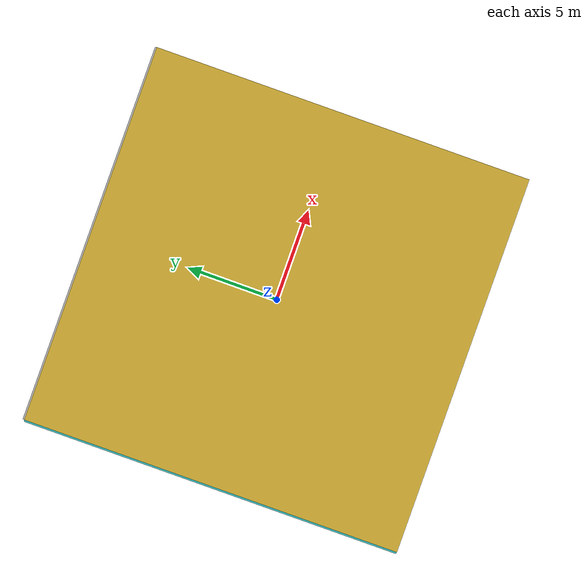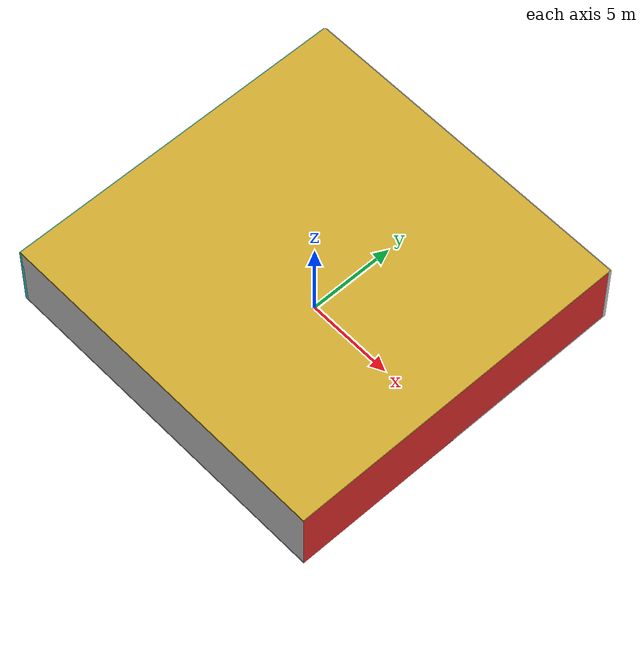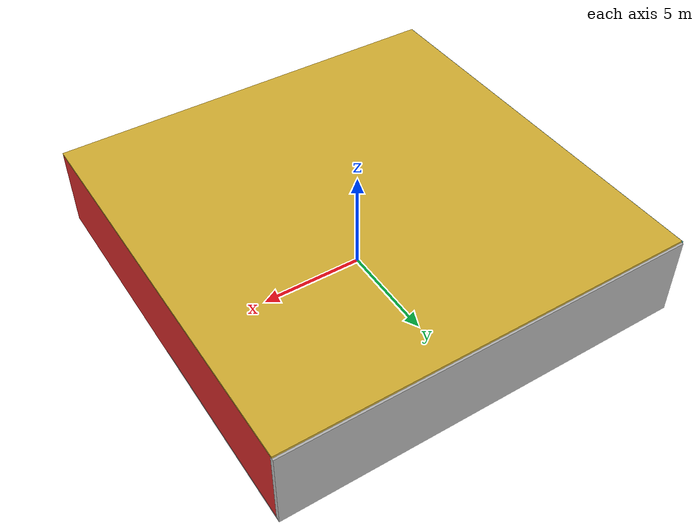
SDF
<sdf version="1.4">
 <world name="default">
  <physics type="ode">
   <max_step_size>0.001</max_step_size>
   <real_time_factor>1</real_time_factor>
   <real_time_update_rate>1000</real_time_update_rate>
   <gravity>0 0 -9.8</gravity>
  </physics>
  <scene><ambient>0.4 0.4 0.4 1</ambient><background>0.7 0.7 0.7 1</background><shadows>1</shadows></scene>
  <model name="Surrounding">
   <static>1</static>
   <link name="Ceiling">
    <collision name="Ceiling_Collision"><geometry><box><size>20 20 0.1</size></box></geometry></collision>
    <visual name="Ceiling_Visual">
     <geometry><box><size>20 20 0.1</size></box></geometry>
     <material>
      <script><uri>file://media/materials/scripts/gazebo.material</uri><name>Gazebo/Gold</name></script>
     </material>
    </visual>
    <pose>0 0 4.05 0 0 0</pose>
   </link>
   <link name="Wall_South">
    <collision name="Wall_South_Collision">
     <geometry><box><size>20 0 4</size></box></geometry>
     <pose>0 0 2 0 -0 0</pose>
    </collision>
    <visual name="Wall_South_Visual">
     <pose>0 0 2 0 -0 0</pose>
     <geometry><box><size>20 0 4</size></box></geometry>
     <material>
      <script><uri>file://media/materials/scripts/gazebo.material</uri><name>Gazebo/PioneerBody</name></script>
     </material>
    </visual>
    <velocity_decay><linear>0</linear><angular>0</angular></velocity_decay>
    <pose>0 -10 0 0 -0 0</pose>
   </link>
   <link name="Wall_East">
    <collision name="Wall_21_Collision">
     <geometry><box><size>20 0 4</size></box></geometry>
     <pose>0 0 2 0 -0 0</pose>
    </collision>
    <visual name="Wall_21_Visual">
     <pose>0 0 2 0 -0 0</pose>
     <geometry><box><size>20 0 4</size></box></geometry>
     <material>
      <script><uri>file://media/materials/scripts/gazebo.material</uri><name>Gazebo/RedBright</name></script>
     </material>
    </visual>
    <velocity_decay><linear>0</linear><angular>0</angular></velocity_decay>
    <pose>10 0 0 0 -0 1.5708</pose>
   </link>
   <link name="Wall_North">
    <collision name="Wall_22_Collision">
     <geometry><box><size>20 0.2 4</size></box></geometry>
     <pose>0 0 2 0 -0 0</pose>
    </collision>
    <visual name="Wall_22_Visual">
     <pose>0 0 2 0 -0 0</pose>
     <geometry><box><size>20 0.2 4</size></box></geometry>
     <material>
      <script><uri>file://media/materials/scripts/gazebo.material</uri><name>Gazebo/LightOff</name></script>
     </material>
    </visual>
    <velocity_decay><linear>0</linear><angular>0</angular></velocity_decay>
    <pose>0 10 0 0 -0 0</pose>
   </link>
   <link name="Wall_West">
    <collision name="Wall_23_Collision">
     <geometry><box><size>20 0.2 4</size></box></geometry>
     <pose>0 0 2 0 -0 0</pose>
    </collision>
    <visual name="Wall_23_Visual">
     <pose>0 0 2 0 -0 0</pose>
     <geometry><box><size>20 0.2 4</size></box></geometry>
     <material>
      <script><uri>file://media/materials/scripts/gazebo.material</uri><name>Gazebo/TurquoiseGlow</name></script>
     </material>
    </visual>
    <velocity_decay><linear>0</linear><angular>0</angular></velocity_decay>
    <pose>-10 0 0 0 0 -1.5708</pose>
   </link>
   <link name="Ground_link">
    <collision name="collision">
     <pose>0 0 .05 0 -0 0</pose>
     <geometry><box><size>20 20 0.1</size></box></geometry>
    </collision>
    <visual name="visual">
     <pose>0 0 .05 0 -0 0</pose>
     <geometry><box><size>20 20 0.1</size></box></geometry>
     <material>
      <script><uri>file://media/materials/scripts/gazebo.material</uri><name>Gazebo/JointAnchor</name></script>
     </material>
    </visual>
   </link>
   <static>1</static>
  </model>
  <spherical_coordinates>
   <surface_model>EARTH_WGS84</surface_model>
   <latitude_deg>0</latitude_deg>
   <longitude_deg>0</longitude_deg>
   <elevation>0</elevation>
   <heading_deg>0</heading_deg>
  </spherical_coordinates>
  <light name="lightball_0" type="diffuse">
   <diffuse>0.8 0.8 0.8 1</diffuse>
   <specular>0.2 0.2 0.2 1</specular>
   <attenuation>
    <range>100</range>
    <constant>0.7</constant>
    <linear>0.01</linear>
    <quadratic>0.001</quadratic>
   </attenuation>
   <direction>-0.5 0.1 -0.9</direction>
   <pose>-5.68533429796 8.14061115597 3.89299799602 0 0 0</pose>
  </light>
  <light name="lightball_1" type="diffuse">
   <diffuse>0.8 0.8 0.8 1</diffuse>
   <specular>0.2 0.2 0.2 1</specular>
   <attenuation>
    <range>100</range>
    <constant>0.7</constant>
    <linear>0.01</linear>
    <quadratic>0.001</quadratic>
   </attenuation>
   <direction>-0.5 0.1 -0.9</direction>
   <pose>-5.88859773977 -1.44716182323 1.40375199894 0 0 0</pose>
  </light>
  <light name="lightball_2" type="diffuse">
   <diffuse>0.8 0.8 0.8 1</diffuse>
   <specular>0.2 0.2 0.2 1</specular>
   <attenuation>
    <range>100</range>
    <constant>0.7</constant>
    <linear>0.01</linear>
    <quadratic>0.001</quadratic>
   </attenuation>
   <direction>-0.5 0.1 -0.9</direction>
   <pose>8.8780633358 -6.09377879485 3.09818681566 0 0 0</pose>
  </light>
  <light name="lightball_3" type="diffuse">
   <diffuse>0.8 0.8 0.8 1</diffuse>
   <specular>0.2 0.2 0.2 1</specular>
   <attenuation>
    <range>100</range>
    <constant>0.7</constant>
    <linear>0.01</linear>
    <quadratic>0.001</quadratic>
   </attenuation>
   <direction>-0.5 0.1 -0.9</direction>
   <pose>5.91242186752 4.5361840014 2.45658317895 0 0 0</pose>
  </light>
  <light name="lightball_4" type="diffuse">
   <diffuse>0.8 0.8 0.8 1</diffuse>
   <specular>0.2 0.2 0.2 1</specular>
   <attenuation>
    <range>100</range>
    <constant>0.7</constant>
    <linear>0.01</linear>
    <quadratic>0.001</quadratic>
   </attenuation>
   <direction>-0.5 0.1 -0.9</direction>
   <pose>-1.10374690205 3.87193025284 3.21846406946 0 0 0</pose>
  </light>
  <light name="lightball_5" type="diffuse">
   <diffuse>0.8 0.8 0.8 1</diffuse>
   <specular>0.2 0.2 0.2 1</specular>
   <attenuation>
    <range>100</range>
    <constant>0.7</constant>
    <linear>0.01</linear>
    <quadratic>0.001</quadratic>
   </attenuation>
   <direction>-0.5 0.1 -0.9</direction>
   <pose>-9.35719986444 -5.94674913308 2.95306202507 0 0 0</pose>
  </light>
  <light name="lightball_6" type="diffuse">
   <diffuse>0.8 0.8 0.8 1</diffuse>
   <specular>0.2 0.2 0.2 1</specular>
   <attenuation>
    <range>100</range>
    <constant>0.7</constant>
    <linear>0.01</linear>
    <quadratic>0.001</quadratic>
   </attenuation>
   <direction>-0.5 0.1 -0.9</direction>
   <pose>5.22769756312 3.21977727491 2.07893639395 0 0 0</pose>
  </light>
  <light name="lightball_7" type="diffuse">
   <diffuse>0.8 0.8 0.8 1</diffuse>
   <specular>0.2 0.2 0.2 1</specular>
   <attenuation>
    <range>100</range>
    <constant>0.7</constant>
    <linear>0.01</linear>
    <quadratic>0.001</quadratic>
   </attenuation>
   <direction>-0.5 0.1 -0.9</direction>
   <pose>-8.93597141235 -6.71306877098 2.14487626737 0 0 0</pose>
  </light>
  <include>
   <uri>model://robocup_3Dsim_goal</uri>
   <pose>-7.9775219098 -7.67297002594 0 0 0 2.8727310856</pose>
  </include>
  <include><uri>model://cabinet</uri><pose>-1.75012748859 1.72739666232 0 0 0 3.07977706793</pose></include>
  <include><uri>model://table</uri><pose>2.13937133051 -7.00617076828 0 0 0 2.16817194556</pose></include>
  <include>
   <uri>model://textured_shapes</uri>
   <pose>4.22618607494 1.62644362071 0 0 0 2.73953316648</pose>
  </include>
  <include>
   <uri>model://robocup_3Dsim_goal</uri>
   <pose>8.20130456908 3.71064204518 0 0 0 2.2458824021</pose>
  </include>
  <include><uri>model://cabinet</uri><pose>8.1562952992 7.42584856576 0 0 0 1.10047889983</pose></include>
 </world>
</sdf>

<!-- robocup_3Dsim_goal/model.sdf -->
<sdf version="1.5">
  <model name="robocup_3d_goal">
    <static>true</static>
    <link name="left_post">
      <pose>0 1.05 0.45 0 0 0</pose>
      <collision name="collision">
        <geometry>
          <cylinder>
            <radius>0.05</radius>
            <length>0.9</length>
          </cylinder>
        </geometry>
      </collision>
      <visual name="visual">
        <geometry>
          <cylinder>
            <radius>0.05</radius>
            <length>0.9</length>
          </cylinder>
        </geometry>
        <material>
          <script>
            <uri>file://media/materials/scripts/gazebo.material</uri>
            <name>Gazebo/ZincYellow</name>
          </script>
        </material>
      </visual>
    </link>
    <link name="left_support_horiz_lower">
      <pose>0.30 1.05 0.01 0 0 0</pose>
      <collision name="collision">
        <geometry>
          <box>
            <size>0.50 0.02 0.02</size>
          </box>
        </geometry>
      </collision>
      <visual name="visual">
        <geometry>
          <box>
            <size>0.50 0.02 0.02</size>
          </box>
        </geometry>
        <material>
          <script>
            <uri>file://media/materials/scripts/gazebo.material</uri>
            <name>Gazebo/White</name>
          </script>
        </material>
      </visual>
    </link>
    <link name="left_support_horiz_upper">
      <pose>0.30 1.05 0.79 0 0 0</pose>
      <collision name="collision">
        <geometry>
          <box>
            <size>0.50 0.02 0.02</size>
          </box>
        </geometry>
      </collision>
      <visual name="visual">
        <geometry>
          <box>
            <size>0.50 0.02 0.02</size>
          </box>
        </geometry>
        <material>
          <script>
            <uri>file://media/materials/scripts/gazebo.material</uri>
            <name>Gazebo/White</name>
          </script>
        </material>
      </visual>
    </link>
    <link name="left_support_vertical">
      <pose>0.56 1.05 0.4 0 1.5708 0</pose>
      <collision name="collision">
        <geometry>
          <box>
            <size>0.80 0.02 0.02</size>
          </box>
        </geometry>
      </collision>
      <visual name="visual">
        <geometry>
          <box>
            <size>0.80 0.02 0.02</size>
          </box>
        </geometry>
        <material>
          <script>
            <uri>file://media/materials/scripts/gazebo.material</uri>
            <name>Gazebo/White</name>
          </script>
        </material>
      </visual>
    </link>
    <link name="right_support_horiz_lower">
      <pose>0.30 -1.05 0.01 0 0 0</pose>
      <collision name="collision">
        <geometry>
          <box>
            <size>0.50 0.02 0.02</size>
          </box>
        </geometry>
      </collision>
      <visual name="visual">
        <geometry>
          <box>
            <size>0.50 0.02 0.02</size>
          </box>
        </geometry>
        <material>
          <script>
            <uri>file://media/materials/scripts/gazebo.material</uri>
            <name>Gazebo/White</name>
          </script>
        </material>
      </visual>
    </link>
    <link name="right_support_horiz_upper">
      <pose>0.30 -1.05 0.79 0 0 0</pose>
      <collision name="collision">
        <geometry>
          <box>
            <size>0.50 0.02 0.02</size>
          </box>
        </geometry>
      </collision>
      <visual name="visual">
        <geometry>
          <box>
            <size>0.50 0.02 0.02</size>
          </box>
        </geometry>
        <material>
          <script>
            <uri>file://media/materials/scripts/gazebo.material</uri>
            <name>Gazebo/White</name>
          </script>
        </material>
      </visual>
    </link>
    <link name="right_support_vertical">
      <pose>0.56 -1.05 0.4 0 1.5708 0</pose>
      <collision name="collision">
        <geometry>
          <box>
            <size>0.80 0.02 0.02</size>
          </box>
        </geometry>
      </collision>
      <visual name="visual">
        <geometry>
          <box>
            <size>0.80 0.02 0.02</size>
          </box>
        </geometry>
        <material>
          <script>
            <uri>file://media/materials/scripts/gazebo.material</uri>
            <name>Gazebo/White</name>
          </script>
        </material>
      </visual>
    </link>
    <link name="center_support_horiz_lower">
      <pose>0.56 0 0.01 0 1.5708 0</pose>
      <collision name="collision">
        <geometry>
          <box>
            <size>0.02 2.08 0.02</size>
          </box>
        </geometry>
      </collision>
      <visual name="visual">
        <geometry>
          <box>
            <size>0.02 2.08 0.02</size>
          </box>
        </geometry>
        <material>
          <script>
            <uri>file://media/materials/scripts/gazebo.material</uri>
            <name>Gazebo/White</name>
          </script>
        </material>
      </visual>
    </link>
    <link name="center_support_horiz_upper">
      <pose>0.56 0 0.79 0 1.5708 0</pose>
      <collision name="collision">
        <geometry>
          <box>
            <size>0.02 2.08 0.02</size>
          </box>
        </geometry>
      </collision>
      <visual name="visual">
        <geometry>
          <box>
            <size>0.02 2.08 0.02</size>
          </box>
        </geometry>
        <material>
          <script>
            <uri>file://media/materials/scripts/gazebo.material</uri>
            <name>Gazebo/White</name>
          </script>
        </material>
      </visual>
    </link>
    <link name="right_post">
      <pose>0 -1.05 0.45 0 0 0</pose>
      <collision name="collision">
        <geometry>
          <cylinder>
            <radius>0.05</radius>
            <length>0.9</length>
          </cylinder>
        </geometry>
      </collision>
      <visual name="visual">
        <geometry>
          <cylinder>
            <radius>0.05</radius>
            <length>0.9</length>
          </cylinder>
        </geometry>
        <material>
          <script>
            <uri>file://media/materials/scripts/gazebo.material</uri>
            <name>Gazebo/ZincYellow</name>
          </script>
        </material>
      </visual>
    </link>
    <link name="crossbar">
      <pose>0 0 0.85 1.57 1.57 0</pose>
      <collision name="collision">
        <geometry>
          <cylinder>
            <radius>0.05</radius>
            <length>2.0</length>
          </cylinder>
        </geometry>
      </collision>
      <visual name="visual">
        <geometry>
          <cylinder>
            <radius>0.05</radius>
            <length>2.0</length>
          </cylinder>
        </geometry>
        <material>
          <script>
            <uri>file://media/materials/scripts/gazebo.material</uri>
            <name>Gazebo/ZincYellow</name>
          </script>
        </material>
      </visual>
    </link>
    <link name="center_net">
      <pose>0.56 0 0.40 0 0 0</pose>
      <collision name="collision">
        <geometry>
          <box>
            <size>0.01 2.1 0.80</size>
          </box>
        </geometry>
      </collision>
      <visual name="visual">
        <geometry>
          <box>
            <size>0.01 2.1 0.80</size>
          </box>
        </geometry>
        <material>
          <script>
            <uri>model://../model_source/models/robocup09_spl_field/materials/scripts/</uri>
            <uri>model://../model_source/models/robocup09_spl_field/materials/textures/</uri>
            <name>RoboCup/Net</name>
          </script>
        </material>
      </visual>
    </link>
    <link name="left_net">
      <pose>0.30 1.05 0.40 0 0 0</pose>
      <collision name="collision">
        <geometry>
          <box>
            <size>0.50 0.01 0.76</size>
          </box>
        </geometry>
      </collision>
      <visual name="visual">
        <geometry>
          <box>
            <size>0.50 0.01 0.76</size>
          </box>
        </geometry>
        <material>
          <script>
            <uri>model://../model_source/models/robocup09_spl_field/materials/scripts/</uri>
            <uri>model://../model_source/models/robocup09_spl_field/materials/textures/</uri>
            <name>RoboCup/Net</name>
          </script>
        </material>
      </visual>
    </link>
    <link name="right_net">
      <pose>0.30 -1.05 0.40 0 0 0</pose>
      <collision name="collision">
        <geometry>
          <box>
            <size>0.50 0.01 0.76</size>
          </box>
        </geometry>
      </collision>
      <visual name="visual">
        <geometry>
          <box>
            <size>0.50 0.01 0.76</size>
          </box>
        </geometry>
        <material>
          <script>
            <uri>model://../model_source/models/robocup09_spl_field/materials/scripts/</uri>
            <uri>model://../model_source/models/robocup09_spl_field/materials/textures/</uri>
            <name>RoboCup/Net</name>
          </script>
        </material>
      </visual>
    </link>
  </model>
</sdf>

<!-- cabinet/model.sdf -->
<sdf version="1.5">
  <model name="cabinet">
    <static>true</static>
    <link name="cabinet_bottom_plate">
      <inertial>
        <pose>0 0 -1 0 0 0</pose>
        <inertia>
          <ixx>2.050000</ixx>
          <ixy>0</ixy>
          <ixz>0</ixz>
          <iyy>2.050000</iyy>
          <iyz>0</iyz>
          <izz>2.050000</izz>
        </inertia>
        <mass>25.000000</mass>
      </inertial>
      <collision name="cabinet_bottom_plate_geom">
        <pose>0 0 0.010000 0 0 0</pose>
        <geometry>
          <box>
            <size>0.450000 0.450000 0.020000</size>
          </box>
        </geometry>
      </collision>
      <visual name="cabinet_bottom_plate_geom_visual">
        <pose>0 0 0.010000 0 0 0</pose>
        <geometry>
          <box>
            <size>0.450000 0.450000 0.020000</size>
          </box>
        </geometry>
        <material>
          <script>
            <uri>model://media/materials/scripts/gazebo.material</uri>
            <name>Gazebo/Wood</name>
          </script>
        </material>
      </visual>
      <collision name="cabinet_bottom_plate_geom_cabinet_back_plate">
        <pose>0.235000 0 0.510000 0 0 0</pose>
        <geometry>
          <box>
            <size>0.020000 0.450000 1.020000</size>
          </box>
        </geometry>
      </collision>
      <visual name="cabinet_bottom_plate_geom_cabinet_back_plate_visual">
        <pose>0.235000 0 0.510000 0 0 0</pose>
        <geometry>
          <box>
            <size>0.020000 0.450000 1.020000</size>
          </box>
        </geometry>
        <material>
          <script>
            <uri>model://media/materials/scripts/gazebo.material</uri>
            <name>Gazebo/Wood</name>
          </script>
        </material>
      </visual>
      <collision name="cabinet_bottom_plate_geom_cabinet_left_plate">
        <pose>0 0.235000 0.510000 0 0 0</pose>
        <geometry>
          <box>
            <size>0.450000 0.020000 1.020000</size>
          </box>
        </geometry>
      </collision>
      <visual name="cabinet_bottom_plate_geom_cabinet_left_plate_visual">
        <pose>0 0.235000 0.510000 0 0 0</pose>
        <geometry>
          <box>
            <size>0.450000 0.020000 1.020000</size>
          </box>
        </geometry>
        <material>
          <script>
            <uri>model://media/materials/scripts/gazebo.material</uri>
            <name>Gazebo/Wood</name>
          </script>
        </material>
      </visual>
      <collision name="cabinet_bottom_plate_geom_cabinet_middle_plate">
        <pose>0 0 0.510000 0 0 0</pose>
        <geometry>
          <box>
            <size>0.450000 0.450000 0.020000</size>
          </box>
        </geometry>
      </collision>
      <visual name="cabinet_bottom_plate_geom_cabinet_middle_plate_visual">
        <pose>0 0 0.510000 0 0 0</pose>
        <geometry>
          <box>
            <size>0.450000 0.450000 0.020000</size>
          </box>
        </geometry>
        <material>
          <script>
            <uri>model://media/materials/scripts/gazebo.material</uri>
            <name>Gazebo/Wood</name>
          </script>
        </material>
      </visual>
      <collision name="cabinet_bottom_plate_geom_cabinet_right_plate">
        <pose>0 -0.235000 0.510000 0 0 0</pose>
        <geometry>
          <box>
            <size>0.450000 0.020000 1.020000</size>
          </box>
        </geometry>
      </collision>
      <visual name="cabinet_bottom_plate_geom_cabinet_right_plate_visual">
        <pose>0 -0.235000 0.510000 0 0 0</pose>
        <geometry>
          <box>
            <size>0.450000 0.020000 1.020000</size>
          </box>
        </geometry>
        <material>
          <script>
            <uri>model://media/materials/scripts/gazebo.material</uri>
            <name>Gazebo/Wood</name>
          </script>
        </material>
      </visual>
      <collision name="cabinet_bottom_plate_geom_cabinet_top_plate">
        <pose>0 0 1.010000 0 0 0</pose>
        <geometry>
          <box>
            <size>0.450000 0.450000 0.020000</size>
          </box>
        </geometry>
      </collision>
      <visual name="cabinet_bottom_plate_geom_cabinet_top_plate_visual">
        <pose>0 0 1.010000 0 0 0</pose>
        <geometry>
          <box>
            <size>0.450000 0.450000 0.020000</size>
          </box>
        </geometry>
        <material>
          <script>
            <uri>model://media/materials/scripts/gazebo.material</uri>
            <name>Gazebo/Wood</name>
          </script>
        </material>
      </visual>
    </link>
  </model>
</sdf>

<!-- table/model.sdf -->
<sdf version="1.5">
  <model name="table">
    <static>true</static>
    <link name="link">
      <collision name="surface">
        <pose>0 0 1.0 0 0 0</pose>
        <geometry>
          <box>
            <size>1.5 0.8 0.03</size>
          </box>
        </geometry>
        <surface>
          <friction>
            <ode>
              <mu>0.6</mu>
              <mu2>0.6</mu2>
            </ode>
          </friction>
        </surface>
      </collision>
      <visual name="visual1">
        <pose>0 0 1.0 0 0 0</pose>
        <geometry>
          <box>
            <size>1.5 0.8 0.03</size>
          </box>
        </geometry>
        <material>
          <script>
            <uri>model://media/materials/scripts/gazebo.material</uri>
            <name>Gazebo/Wood</name>
          </script>
        </material>
      </visual>
      <collision name="front_left_leg">
        <pose>0.68 0.38 0.5 0 0 0</pose>
        <geometry>
          <cylinder>
            <radius>0.02</radius>
            <length>1.0</length>
          </cylinder>
        </geometry>
      </collision>
      <visual name="front_left_leg">
        <pose>0.68 0.38 0.5 0 0 0</pose>
        <geometry>
          <cylinder>
            <radius>0.02</radius>
            <length>1.0</length>
          </cylinder>
        </geometry>
        <material>
          <script>
            <uri>model://media/materials/scripts/gazebo.material</uri>
            <name>Gazebo/Grey</name>
          </script>
        </material>
      </visual>
      <collision name="front_right_leg">
        <pose>0.68 -0.38 0.5 0 0 0</pose>
        <geometry>
          <cylinder>
            <radius>0.02</radius>
            <length>1.0</length>
          </cylinder>
        </geometry>
      </collision>
      <visual name="front_right_leg">
        <pose>0.68 -0.38 0.5 0 0 0</pose>
        <geometry>
          <cylinder>
            <radius>0.02</radius>
            <length>1.0</length>
          </cylinder>
        </geometry>
        <material>
          <script>
            <uri>model://media/materials/scripts/gazebo.material</uri>
            <name>Gazebo/Grey</name>
          </script>
        </material>
      </visual>
      <collision name="back_right_leg">
        <pose>-0.68 -0.38 0.5 0 0 0</pose>
        <geometry>
          <cylinder>
            <radius>0.02</radius>
            <length>1.0</length>
          </cylinder>
        </geometry>
      </collision>
      <visual name="back_right_leg">
        <pose>-0.68 -0.38 0.5 0 0 0</pose>
        <geometry>
          <cylinder>
            <radius>0.02</radius>
            <length>1.0</length>
          </cylinder>
        </geometry>
        <material>
          <script>
            <uri>model://media/materials/scripts/gazebo.material</uri>
            <name>Gazebo/Grey</name>
          </script>
        </material>
      </visual>
      <collision name="back_left_leg">
        <pose>-0.68 0.38 0.5 0 0 0</pose>
        <geometry>
          <cylinder>
            <radius>0.02</radius>
            <length>1.0</length>
          </cylinder>
        </geometry>
      </collision>
      <visual name="back_left_leg">
        <pose>-0.68 0.38 0.5 0 0 0</pose>
        <geometry>
          <cylinder>
            <radius>0.02</radius>
            <length>1.0</length>
          </cylinder>
        </geometry>
        <material>
          <script>
            <uri>model://media/materials/scripts/gazebo.material</uri>
            <name>Gazebo/Grey</name>
          </script>
        </material>
      </visual>
    </link>
  </model>
</sdf>

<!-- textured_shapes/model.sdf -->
<sdf version="1.6">
  <model name="textured_shapes">
    <pose>0 0 0.5 0 0 0</pose>
    <link name="box">
      <pose>0 -1.5 0 0 0 0</pose>
      <collision name="collision">
        <geometry>
          <box>
            <size>1 1 1</size>
          </box>
        </geometry>
      </collision>
      <visual name="visual">
        <geometry>
          <box>
            <size>1 1 1</size>
          </box>
        </geometry>
        <material>
          <script>
            <uri>model://../model_source/models/textured_shapes/materials/scripts</uri>
            <uri>model://../model_source/models/textured_shapes/materials/textures</uri>
            <name>TexturedShape/Squares</name>
          </script>
        </material>
      </visual>
    </link>
    <link name="sphere">
      <collision name="collision">
        <geometry>
          <sphere>
            <radius>0.5</radius>
          </sphere>
        </geometry>
      </collision>
      <visual name="visual">
        <geometry>
          <sphere>
            <radius>0.5</radius>
          </sphere>
        </geometry>
        <material>
          <script>
            <uri>model://../model_source/models/textured_shapes/materials/scripts</uri>
            <uri>model://../model_source/models/textured_shapes/materials/textures</uri>
            <name>TexturedShape/Squares</name>
          </script>
        </material>
      </visual>
    </link>
    <link name="cylinder">
      <pose>0 1.5 0 0 0 0</pose>
      <collision name="collision">
        <geometry>
          <cylinder>
            <radius>0.5</radius>
            <length>1</length>
          </cylinder>
        </geometry>
      </collision>
      <visual name="visual">
        <geometry>
          <cylinder>
            <radius>0.5</radius>
            <length>1</length>
          </cylinder>
        </geometry>
        <material>
          <script>
            <uri>model://../model_source/models/textured_shapes/materials/scripts</uri>
            <uri>model://../model_source/models/textured_shapes/materials/textures</uri>
            <name>TexturedShape/Squares</name>
          </script>
        </material>
      </visual>
    </link>
  </model>
</sdf>
